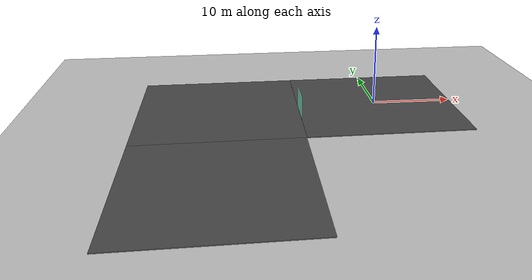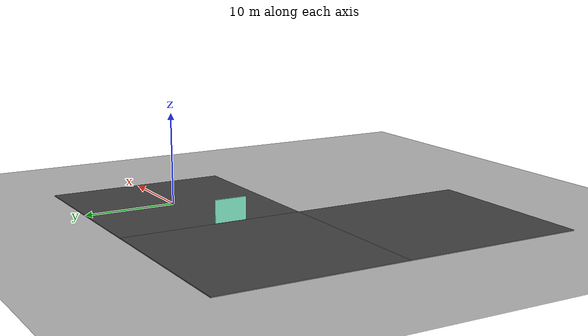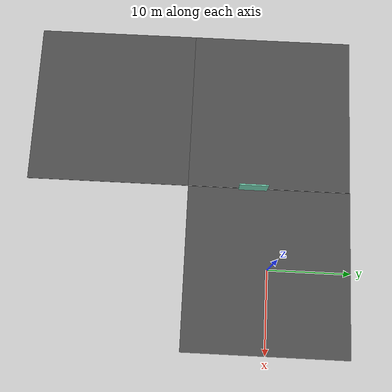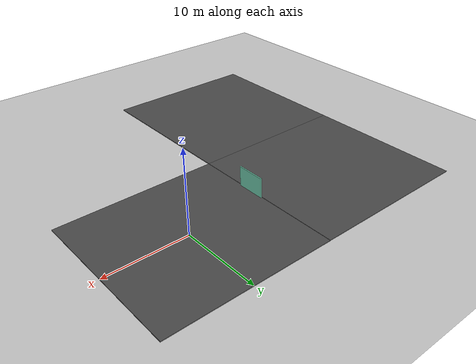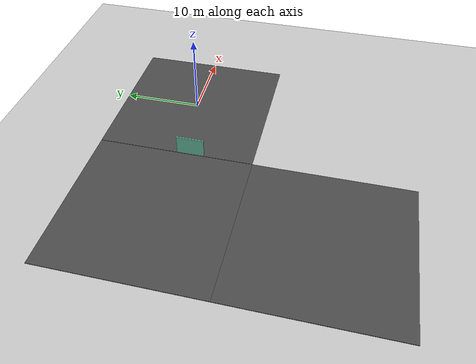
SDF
<sdf version="1.6">
 <world name="default">
  <model name="ground_plane">
   <static>1</static>
   <link name="link">
    <collision name="collision">
     <geometry><plane><normal>0 0 1</normal><size>100 100</size></plane></geometry>
     <surface>
      <contact><collide_bitmask>65535</collide_bitmask></contact>
      <friction><ode><mu>100</mu><mu2>50</mu2></ode></friction>
     </surface>
    </collision>
    <visual name="visual">
     <cast_shadows>0</cast_shadows>
     <geometry><plane><normal>0 0 1</normal><size>100 100</size></plane></geometry>
     <material>
      <script><uri>file://media/materials/scripts/gazebo.material</uri><name>Gazebo/Grey</name></script>
     </material>
    </visual>
   </link>
  </model>
  <model name="asphalt_plane">
   <static>1</static>
   <link name="link">
    <collision name="collision"><geometry><box><size>20 20 0.1</size></box></geometry></collision>
    <visual name="visual">
     <cast_shadows>0</cast_shadows>
     <geometry><box><size>20 20 0.1</size></box></geometry>
     <material>
      <script>
       <uri>model://asphalt_plane/materials/scripts</uri>
       <uri>model://asphalt_plane/materials/textures</uri>
       <name>vrc/asphalt</name>
      </script>
     </material>
    </visual>
   </link>
   <pose>0.045515 0.016583 0 0 -0 0</pose>
  </model>
  <model name="backwall">
   <pose>-9.86603 -2.00825 0 0 -0 0</pose>
   <link name="Wall_11">
    <collision name="Wall_11_Collision">
     <geometry><box><size>3.5 0.15 2.5</size></box></geometry>
     <pose>0 0 1.25 0 -0 0</pose>
    </collision>
    <visual name="Wall_11_Visual">
     <pose>0 0 1.25 0 -0 0</pose>
     <geometry><box><size>3.5 0.15 2.5</size></box></geometry>
     <material>
      <script><uri>file://media/materials/scripts/gazebo.material</uri><name>Gazebo/Grey</name></script>
      <ambient>0.435294 0.796078 0.67451 1</ambient>
     </material>
     <meta><layer>0</layer></meta>
    </visual>
    <pose>0 0 0 0 -0 1.5708</pose>
   </link>
   <static>1</static>
  </model>
  <model name="asphalt_plane_1">
   <static>1</static>
   <link name="link">
    <collision name="collision"><geometry><box><size>20 20 0.1</size></box></geometry></collision>
    <visual name="visual">
     <cast_shadows>0</cast_shadows>
     <geometry><box><size>20 20 0.1</size></box></geometry>
     <material>
      <script>
       <uri>model://asphalt_plane/materials/scripts</uri>
       <uri>model://asphalt_plane/materials/textures</uri>
       <name>vrc/asphalt</name>
      </script>
     </material>
    </visual>
   </link>
   <pose>-20 0 0 0 -0 0</pose>
  </model>
  <model name="asphalt_plane_6">
   <static>1</static>
   <link name="link">
    <collision name="collision"><geometry><box><size>20 20 0.1</size></box></geometry></collision>
    <visual name="visual">
     <cast_shadows>0</cast_shadows>
     <geometry><box><size>20 20 0.1</size></box></geometry>
     <material>
      <script>
       <uri>model://asphalt_plane/materials/scripts</uri>
       <uri>model://asphalt_plane/materials/textures</uri>
       <name>vrc/asphalt</name>
      </script>
     </material>
    </visual>
   </link>
   <pose>-20 -20 0 0 -0 0</pose>
  </model>
 </world>
</sdf>
